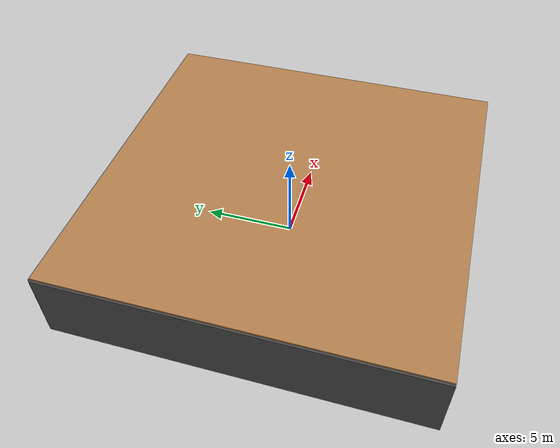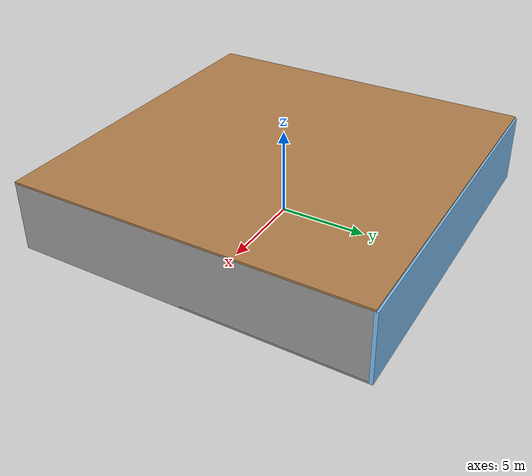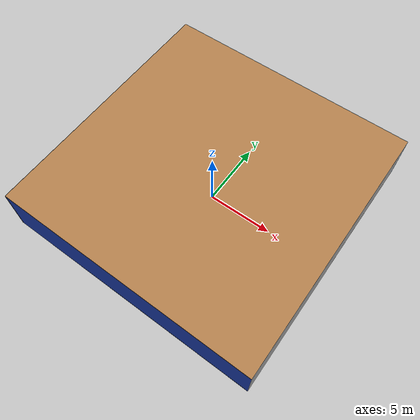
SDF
<sdf version="1.4">
 <world name="default">
  <physics type="ode">
   <max_step_size>0.001</max_step_size>
   <real_time_factor>1</real_time_factor>
   <real_time_update_rate>1000</real_time_update_rate>
   <gravity>0 0 -9.8</gravity>
  </physics>
  <scene><ambient>0.4 0.4 0.4 1</ambient><background>0.7 0.7 0.7 1</background><shadows>1</shadows></scene>
  <model name="Surrounding">
   <static>1</static>
   <link name="Ceiling">
    <collision name="Ceiling_Collision"><geometry><box><size>20 20 0.1</size></box></geometry></collision>
    <visual name="Ceiling_Visual">
     <geometry><box><size>20 20 0.1</size></box></geometry>
     <material>
      <script><uri>file://media/materials/scripts/gazebo.material</uri><name>Gazebo/WoodPallet</name></script>
     </material>
    </visual>
    <pose>0 0 4.05 0 0 0</pose>
   </link>
   <link name="Wall_South">
    <collision name="Wall_South_Collision">
     <geometry><box><size>20 0 4</size></box></geometry>
     <pose>0 0 2 0 -0 0</pose>
    </collision>
    <visual name="Wall_South_Visual">
     <pose>0 0 2 0 -0 0</pose>
     <geometry><box><size>20 0 4</size></box></geometry>
     <material>
      <script><uri>file://media/materials/scripts/gazebo.material</uri><name>Gazebo/BlueGlow</name></script>
     </material>
    </visual>
    <velocity_decay><linear>0</linear><angular>0</angular></velocity_decay>
    <pose>0 -10 0 0 -0 0</pose>
   </link>
   <link name="Wall_East">
    <collision name="Wall_21_Collision">
     <geometry><box><size>20 0 4</size></box></geometry>
     <pose>0 0 2 0 -0 0</pose>
    </collision>
    <visual name="Wall_21_Visual">
     <pose>0 0 2 0 -0 0</pose>
     <geometry><box><size>20 0 4</size></box></geometry>
     <material>
      <script><uri>file://media/materials/scripts/gazebo.material</uri><name>Gazebo/GreyGradientSky</name></script>
     </material>
    </visual>
    <velocity_decay><linear>0</linear><angular>0</angular></velocity_decay>
    <pose>10 0 0 0 -0 1.5708</pose>
   </link>
   <link name="Wall_North">
    <collision name="Wall_22_Collision">
     <geometry><box><size>20 0.2 4</size></box></geometry>
     <pose>0 0 2 0 -0 0</pose>
    </collision>
    <visual name="Wall_22_Visual">
     <pose>0 0 2 0 -0 0</pose>
     <geometry><box><size>20 0.2 4</size></box></geometry>
     <material>
      <script><uri>file://media/materials/scripts/gazebo.material</uri><name>Gazebo/SkyBlue</name></script>
     </material>
    </visual>
    <velocity_decay><linear>0</linear><angular>0</angular></velocity_decay>
    <pose>0 10 0 0 -0 0</pose>
   </link>
   <link name="Wall_West">
    <collision name="Wall_23_Collision">
     <geometry><box><size>20 0.2 4</size></box></geometry>
     <pose>0 0 2 0 -0 0</pose>
    </collision>
    <visual name="Wall_23_Visual">
     <pose>0 0 2 0 -0 0</pose>
     <geometry><box><size>20 0.2 4</size></box></geometry>
     <material>
      <script><uri>file://media/materials/scripts/gazebo.material</uri><name>Gazebo/Road</name></script>
     </material>
    </visual>
    <velocity_decay><linear>0</linear><angular>0</angular></velocity_decay>
    <pose>-10 0 0 0 0 -1.5708</pose>
   </link>
   <link name="Ground_link">
    <collision name="collision">
     <pose>0 0 .05 0 -0 0</pose>
     <geometry><box><size>20 20 0.1</size></box></geometry>
    </collision>
    <visual name="visual">
     <pose>0 0 .05 0 -0 0</pose>
     <geometry><box><size>20 20 0.1</size></box></geometry>
     <material>
      <script><uri>file://media/materials/scripts/gazebo.material</uri><name>Gazebo/GreyTransparent</name></script>
     </material>
    </visual>
   </link>
   <static>1</static>
  </model>
  <spherical_coordinates>
   <surface_model>EARTH_WGS84</surface_model>
   <latitude_deg>0</latitude_deg>
   <longitude_deg>0</longitude_deg>
   <elevation>0</elevation>
   <heading_deg>0</heading_deg>
  </spherical_coordinates>
  <light name="lightball_0" type="diffuse">
   <diffuse>0.8 0.8 0.8 1</diffuse>
   <specular>0.2 0.2 0.2 1</specular>
   <attenuation>
    <range>100</range>
    <constant>0.7</constant>
    <linear>0.01</linear>
    <quadratic>0.001</quadratic>
   </attenuation>
   <direction>-0.5 0.1 -0.9</direction>
   <pose>-4.68273679715 -8.76129043727 2.9221915559 0 0 0</pose>
  </light>
  <light name="lightball_1" type="diffuse">
   <diffuse>0.8 0.8 0.8 1</diffuse>
   <specular>0.2 0.2 0.2 1</specular>
   <attenuation>
    <range>100</range>
    <constant>0.7</constant>
    <linear>0.01</linear>
    <quadratic>0.001</quadratic>
   </attenuation>
   <direction>-0.5 0.1 -0.9</direction>
   <pose>-9.34149751915 6.02573118053 3.41506637335 0 0 0</pose>
  </light>
  <light name="lightball_2" type="diffuse">
   <diffuse>0.8 0.8 0.8 1</diffuse>
   <specular>0.2 0.2 0.2 1</specular>
   <attenuation>
    <range>100</range>
    <constant>0.7</constant>
    <linear>0.01</linear>
    <quadratic>0.001</quadratic>
   </attenuation>
   <direction>-0.5 0.1 -0.9</direction>
   <pose>8.48813404671 9.07152693413 1.77075751507 0 0 0</pose>
  </light>
  <include><uri>model://cabinet</uri><pose>-7.91336578876 4.19045543895 0 0 0 0.451258350534</pose></include>
  <include>
   <uri>model://textured_shapes</uri>
   <pose>-3.86038649702 1.66376131347 0 0 0 1.12477505951</pose>
  </include>
  <include><uri>model://cabinet</uri><pose>-1.32128940896 -4.80556323994 0 0 0 1.58462213944</pose></include>
  <include><uri>model://cabinet</uri><pose>-1.23262306389 5.03029374628 0 0 0 1.08857358468</pose></include>
  <include><uri>model://cabinet</uri><pose>4.74608521912 1.58186992079 0 0 0 1.48665994221</pose></include>
 </world>
</sdf>

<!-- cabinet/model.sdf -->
<sdf version="1.5">
  <model name="cabinet">
    <static>true</static>
    <link name="cabinet_bottom_plate">
      <inertial>
        <pose>0 0 -1 0 0 0</pose>
        <inertia>
          <ixx>2.050000</ixx>
          <ixy>0</ixy>
          <ixz>0</ixz>
          <iyy>2.050000</iyy>
          <iyz>0</iyz>
          <izz>2.050000</izz>
        </inertia>
        <mass>25.000000</mass>
      </inertial>
      <collision name="cabinet_bottom_plate_geom">
        <pose>0 0 0.010000 0 0 0</pose>
        <geometry>
          <box>
            <size>0.450000 0.450000 0.020000</size>
          </box>
        </geometry>
      </collision>
      <visual name="cabinet_bottom_plate_geom_visual">
        <pose>0 0 0.010000 0 0 0</pose>
        <geometry>
          <box>
            <size>0.450000 0.450000 0.020000</size>
          </box>
        </geometry>
        <material>
          <script>
            <uri>model://media/materials/scripts/gazebo.material</uri>
            <name>Gazebo/Wood</name>
          </script>
        </material>
      </visual>
      <collision name="cabinet_bottom_plate_geom_cabinet_back_plate">
        <pose>0.235000 0 0.510000 0 0 0</pose>
        <geometry>
          <box>
            <size>0.020000 0.450000 1.020000</size>
          </box>
        </geometry>
      </collision>
      <visual name="cabinet_bottom_plate_geom_cabinet_back_plate_visual">
        <pose>0.235000 0 0.510000 0 0 0</pose>
        <geometry>
          <box>
            <size>0.020000 0.450000 1.020000</size>
          </box>
        </geometry>
        <material>
          <script>
            <uri>model://media/materials/scripts/gazebo.material</uri>
            <name>Gazebo/Wood</name>
          </script>
        </material>
      </visual>
      <collision name="cabinet_bottom_plate_geom_cabinet_left_plate">
        <pose>0 0.235000 0.510000 0 0 0</pose>
        <geometry>
          <box>
            <size>0.450000 0.020000 1.020000</size>
          </box>
        </geometry>
      </collision>
      <visual name="cabinet_bottom_plate_geom_cabinet_left_plate_visual">
        <pose>0 0.235000 0.510000 0 0 0</pose>
        <geometry>
          <box>
            <size>0.450000 0.020000 1.020000</size>
          </box>
        </geometry>
        <material>
          <script>
            <uri>model://media/materials/scripts/gazebo.material</uri>
            <name>Gazebo/Wood</name>
          </script>
        </material>
      </visual>
      <collision name="cabinet_bottom_plate_geom_cabinet_middle_plate">
        <pose>0 0 0.510000 0 0 0</pose>
        <geometry>
          <box>
            <size>0.450000 0.450000 0.020000</size>
          </box>
        </geometry>
      </collision>
      <visual name="cabinet_bottom_plate_geom_cabinet_middle_plate_visual">
        <pose>0 0 0.510000 0 0 0</pose>
        <geometry>
          <box>
            <size>0.450000 0.450000 0.020000</size>
          </box>
        </geometry>
        <material>
          <script>
            <uri>model://media/materials/scripts/gazebo.material</uri>
            <name>Gazebo/Wood</name>
          </script>
        </material>
      </visual>
      <collision name="cabinet_bottom_plate_geom_cabinet_right_plate">
        <pose>0 -0.235000 0.510000 0 0 0</pose>
        <geometry>
          <box>
            <size>0.450000 0.020000 1.020000</size>
          </box>
        </geometry>
      </collision>
      <visual name="cabinet_bottom_plate_geom_cabinet_right_plate_visual">
        <pose>0 -0.235000 0.510000 0 0 0</pose>
        <geometry>
          <box>
            <size>0.450000 0.020000 1.020000</size>
          </box>
        </geometry>
        <material>
          <script>
            <uri>model://media/materials/scripts/gazebo.material</uri>
            <name>Gazebo/Wood</name>
          </script>
        </material>
      </visual>
      <collision name="cabinet_bottom_plate_geom_cabinet_top_plate">
        <pose>0 0 1.010000 0 0 0</pose>
        <geometry>
          <box>
            <size>0.450000 0.450000 0.020000</size>
          </box>
        </geometry>
      </collision>
      <visual name="cabinet_bottom_plate_geom_cabinet_top_plate_visual">
        <pose>0 0 1.010000 0 0 0</pose>
        <geometry>
          <box>
            <size>0.450000 0.450000 0.020000</size>
          </box>
        </geometry>
        <material>
          <script>
            <uri>model://media/materials/scripts/gazebo.material</uri>
            <name>Gazebo/Wood</name>
          </script>
        </material>
      </visual>
    </link>
  </model>
</sdf>

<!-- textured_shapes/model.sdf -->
<sdf version="1.6">
  <model name="textured_shapes">
    <pose>0 0 0.5 0 0 0</pose>
    <link name="box">
      <pose>0 -1.5 0 0 0 0</pose>
      <collision name="collision">
        <geometry>
          <box>
            <size>1 1 1</size>
          </box>
        </geometry>
      </collision>
      <visual name="visual">
        <geometry>
          <box>
            <size>1 1 1</size>
          </box>
        </geometry>
        <material>
          <script>
            <uri>model://../model_source/models/textured_shapes/materials/scripts</uri>
            <uri>model://../model_source/models/textured_shapes/materials/textures</uri>
            <name>TexturedShape/Squares</name>
          </script>
        </material>
      </visual>
    </link>
    <link name="sphere">
      <collision name="collision">
        <geometry>
          <sphere>
            <radius>0.5</radius>
          </sphere>
        </geometry>
      </collision>
      <visual name="visual">
        <geometry>
          <sphere>
            <radius>0.5</radius>
          </sphere>
        </geometry>
        <material>
          <script>
            <uri>model://../model_source/models/textured_shapes/materials/scripts</uri>
            <uri>model://../model_source/models/textured_shapes/materials/textures</uri>
            <name>TexturedShape/Squares</name>
          </script>
        </material>
      </visual>
    </link>
    <link name="cylinder">
      <pose>0 1.5 0 0 0 0</pose>
      <collision name="collision">
        <geometry>
          <cylinder>
            <radius>0.5</radius>
            <length>1</length>
          </cylinder>
        </geometry>
      </collision>
      <visual name="visual">
        <geometry>
          <cylinder>
            <radius>0.5</radius>
            <length>1</length>
          </cylinder>
        </geometry>
        <material>
          <script>
            <uri>model://../model_source/models/textured_shapes/materials/scripts</uri>
            <uri>model://../model_source/models/textured_shapes/materials/textures</uri>
            <name>TexturedShape/Squares</name>
          </script>
        </material>
      </visual>
    </link>
  </model>
</sdf>
